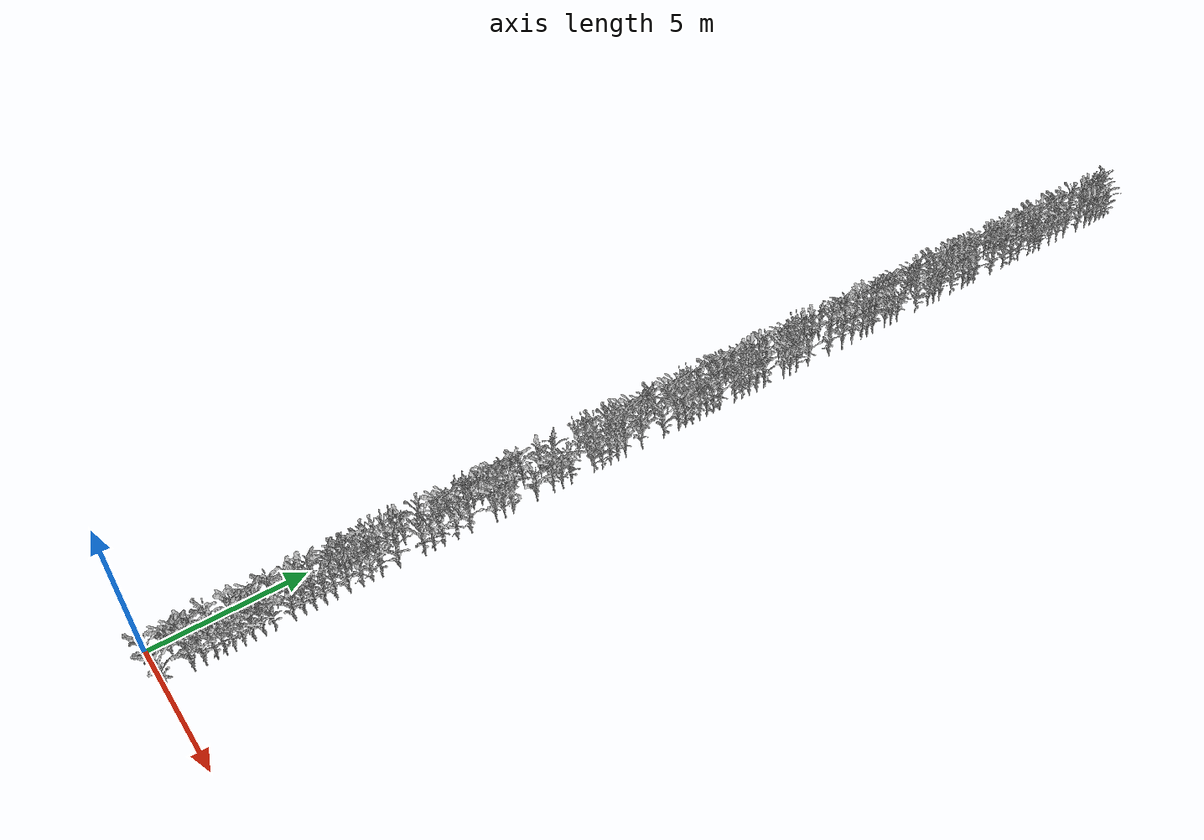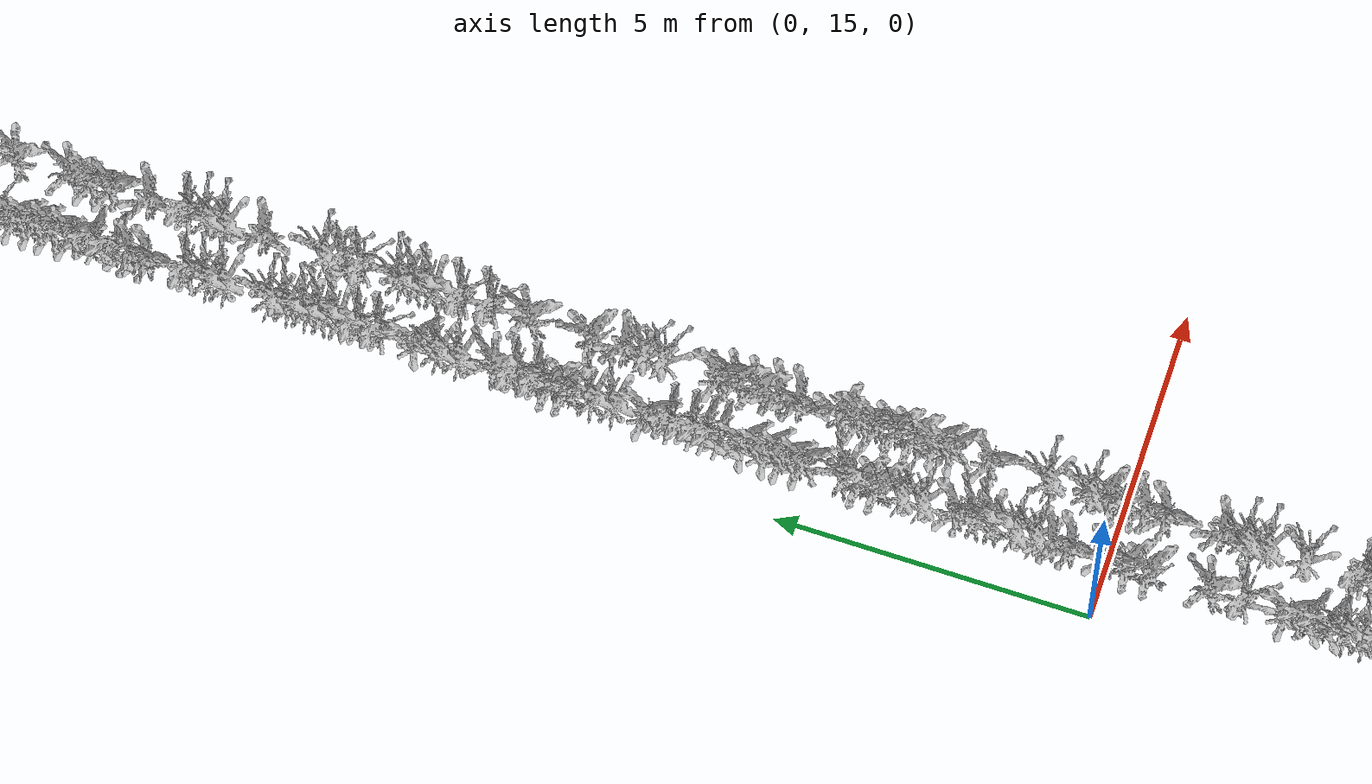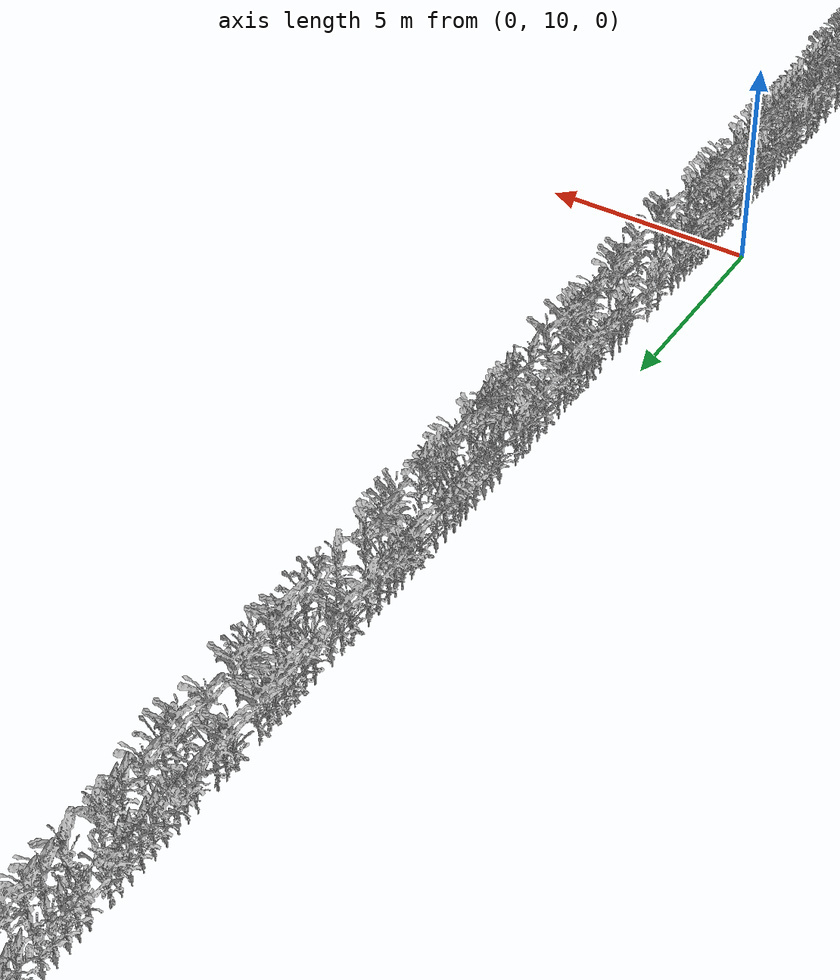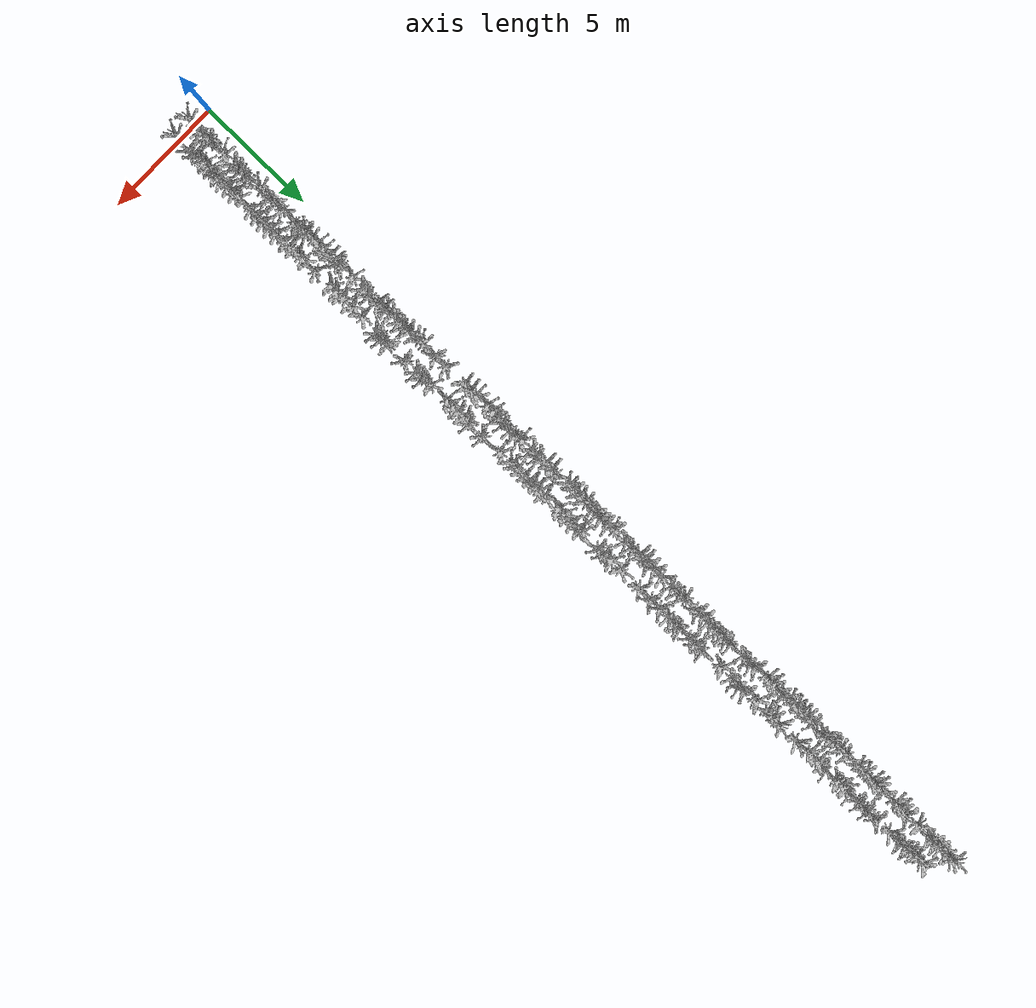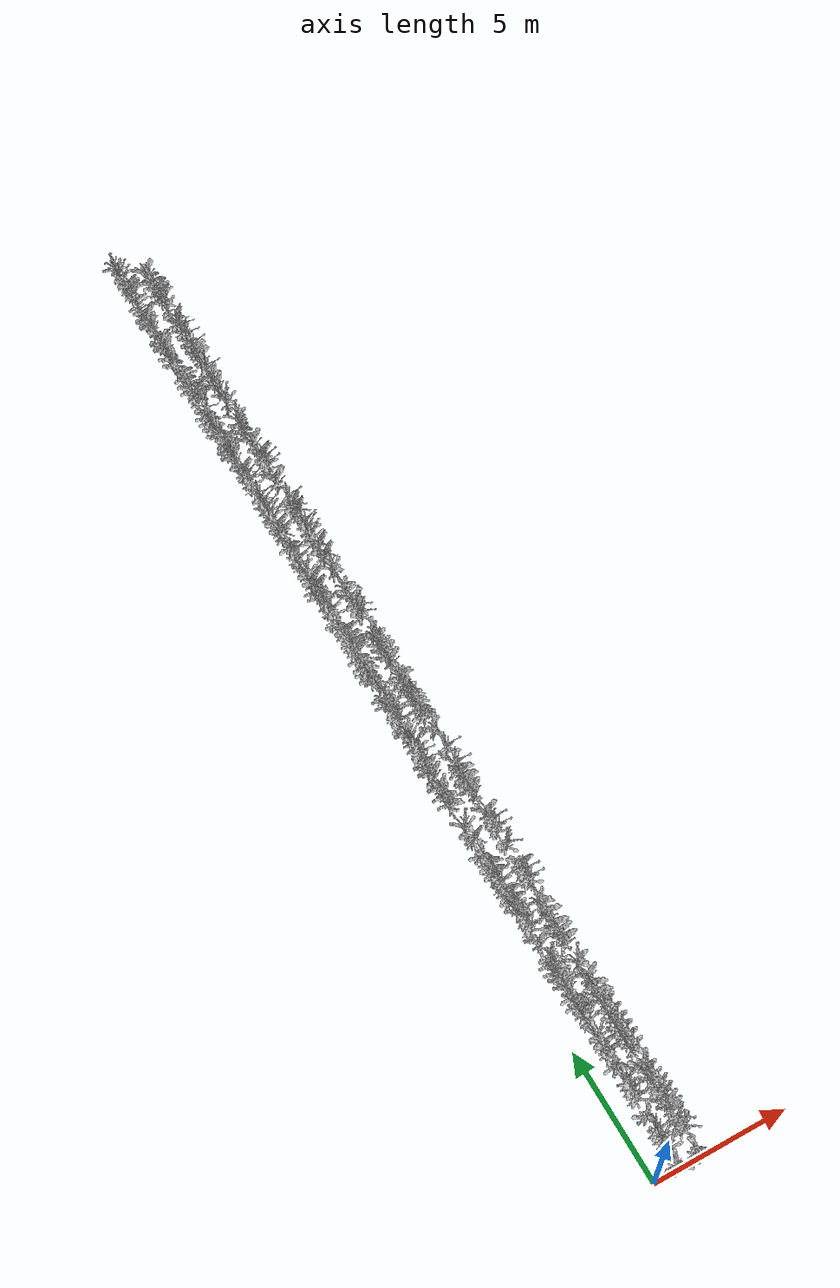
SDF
<sdf version="1.5">
  <model name="model_plot">
    <static>true</static>

    <include>
      <uri>model://sorghum_variant_2</uri>
      <name>plant_0_197</name>
      <pose>0.78 0.00859493432765372 0 0.0 0.0 0.15707963267948966</pose>
    </include>
<include>
      <uri>model://sorghum_variant_2</uri>
      <name>plant_0_199</name>
      <pose>0.78 0.604318459544044 0 0.0 0.0 3.01941960595019</pose>
    </include>
    <include>
      <uri>model://sorghum_variant_2</uri>
      <name>plant_0_200</name>
      <pose>0.78 0.92644527 0 0.0 0.0 3.01941960595019</pose>
    </include>
<include>
      <uri>model://sorghum_variant_2</uri>
      <name>plant_0_201</name>
      <pose>0.78 1.2485720710655503 0 0.0 0.0 2.4609142453120048</pose>
    </include>
<include>
      <uri>model://sorghum_variant_2</uri>
      <name>plant_0_203</name>
      <pose>0.78 1.8132744933393914 0 0.0 0.0 6.021385919380437</pose>
    </include>
<include>
      <uri>model://sorghum_variant_2</uri>
      <name>plant_0_205</name>
      <pose>0.78 2.495308846564527 0 0.0 0.0 2.4609142453120048</pose>
    </include>
    <include>
      <uri>model://sorghum_variant_2</uri>
      <name>plant_0_206</name>
      <pose>0.78 2.80290833 0 0.0 0.0 2.4609142453120048</pose>
    </include>
<include>
      <uri>model://sorghum_variant_2</uri>
      <name>plant_0_207</name>
      <pose>0.78 3.110507809060019 0 0.0 0.0 2.9321531433504737</pose>
    </include>
<include>
      <uri>model://sorghum_variant_2</uri>
      <name>plant_0_209</name>
      <pose>0.78 3.7275937663911125 0 0.0 0.0 0.22689280275926285</pose>
    </include>
<include>
      <uri>model://sorghum_variant_2</uri>
      <name>plant_0_211</name>
      <pose>0.78 4.2437941434434805 0 0.0 0.0 1.1693705988362009</pose>
    </include>
    <include>
      <uri>model://sorghum_variant_2</uri>
      <name>plant_0_212</name>
      <pose>0.78 4.54021915 0 0.0 0.0 1.1693705988362009</pose>
    </include>
<include>
      <uri>model://sorghum_variant_2</uri>
      <name>plant_0_213</name>
      <pose>0.78 4.836644146607865 0 0.0 0.0 3.2288591161895095</pose>
    </include>
<include>
      <uri>model://sorghum_variant_2</uri>
      <name>plant_0_215</name>
      <pose>0.78 5.469874423059792 0 0.0 0.0 3.3335788713091694</pose>
    </include>
    <include>
      <uri>model://sorghum_variant_2</uri>
      <name>plant_0_216</name>
      <pose>0.78 5.78034959 0 0.0 0.0 3.3335788713091694</pose>
    </include>
<include>
      <uri>model://sorghum_variant_2</uri>
      <name>plant_0_217</name>
      <pose>0.78 6.090824765904237 0 0.0 0.0 0.20943951023931956</pose>
    </include>
    <include>
      <uri>model://sorghum_variant_2</uri>
      <name>plant_0_218</name>
      <pose>0.78 6.40960816 0 0.0 0.0 0.20943951023931956</pose>
    </include>
<include>
      <uri>model://sorghum_variant_2</uri>
      <name>plant_0_219</name>
      <pose>0.78 6.728391545595026 0 0.0 0.0 5.480333851262195</pose>
    </include>
    <include>
      <uri>model://sorghum_variant_2</uri>
      <name>plant_0_220</name>
      <pose>0.78 7.02879881 0 0.0 0.0 5.480333851262195</pose>
    </include>
<include>
      <uri>model://sorghum_variant_2</uri>
      <name>plant_0_221</name>
      <pose>0.78 7.32920607511361 0 0.0 0.0 4.084070449666731</pose>
    </include>
    <include>
      <uri>model://sorghum_variant_2</uri>
      <name>plant_0_222</name>
      <pose>0.78 7.61508239 0 0.0 0.0 4.084070449666731</pose>
    </include>
<include>
      <uri>model://sorghum_variant_2</uri>
      <name>plant_0_223</name>
      <pose>0.78 7.900958697858983 0 0.0 0.0 1.9198621771937625</pose>
    </include>
<include>
      <uri>model://sorghum_variant_2</uri>
      <name>plant_0_225</name>
      <pose>0.78 8.54025663577937 0 0.0 0.0 5.358160803622591</pose>
    </include>
<include>
      <uri>model://sorghum_variant_2</uri>
      <name>plant_0_227</name>
      <pose>0.78 9.141726983418838 0 0.0 0.0 2.548180707911721</pose>
    </include>
    <include>
      <uri>model://sorghum_variant_2</uri>
      <name>plant_0_228</name>
      <pose>0.78 9.47685126 0 0.0 0.0 2.548180707911721</pose>
    </include>
<include>
      <uri>model://sorghum_variant_2</uri>
      <name>plant_0_229</name>
      <pose>0.78 9.81197552772033 0 0.0 0.0 3.8920842319473548</pose>
    </include>
    <include>
      <uri>model://sorghum_variant_2</uri>
      <name>plant_0_230</name>
      <pose>0.78 10.08239049 0 0.0 0.0 3.8920842319473548</pose>
    </include>
<include>
      <uri>model://sorghum_variant_2</uri>
      <name>plant_0_231</name>
      <pose>0.715 10.352805445266995 0 0.0 0.0 0.8726646259971648</pose>
    </include>
    <include>
      <uri>model://sorghum_variant_2</uri>
      <name>plant_0_232</name>
      <pose>0.715 10.65880189 0 0.0 0.0 0.8726646259971648</pose>
    </include>
<include>
      <uri>model://sorghum_variant_2</uri>
      <name>plant_0_233</name>
      <pose>0.715 10.964798343013909 0 0.0 0.0 2.705260340591211</pose>
    </include>
    <include>
      <uri>model://sorghum_variant_2</uri>
      <name>plant_0_234</name>
      <pose>0.715 11.26209431 0 0.0 0.0 2.705260340591211</pose>
    </include>
<include>
      <uri>model://sorghum_variant_2</uri>
      <name>plant_0_235</name>
      <pose>0.715 11.559390276855224 0 0.0 0.0 0.6457718232379019</pose>
    </include>
    <include>
      <uri>model://sorghum_variant_2</uri>
      <name>plant_0_236</name>
      <pose>0.715 11.86940034 0 0.0 0.0 0.6457718232379019</pose>
    </include>
<include>
      <uri>model://sorghum_variant_2</uri>
      <name>plant_0_237</name>
      <pose>0.715 12.179410399091381 0 0.0 0.0 0.0</pose>
    </include>
<include>
      <uri>model://sorghum_variant_2</uri>
      <name>plant_0_239</name>
      <pose>0.715 12.848557472244947 0 0.0 0.0 1.4486232791552935</pose>
    </include>
<include>
      <uri>model://sorghum_variant_2</uri>
      <name>plant_0_241</name>
      <pose>0.715 13.335958901374 0 0.0 0.0 3.5779249665883754</pose>
    </include>
<include>
      <uri>model://sorghum_variant_2</uri>
      <name>plant_0_244</name>
      <pose>0.715 14.312959432096134 0 0.0 0.0 4.223696789826278</pose>
    </include>
    <include>
      <uri>model://sorghum_variant_2</uri>
      <name>plant_0_245</name>
      <pose>0.715 14.64116904 0 0.0 0.0 4.223696789826278</pose>
    </include>
<include>
      <uri>model://sorghum_variant_2</uri>
      <name>plant_0_246</name>
      <pose>0.715 14.969378642265788 0 0.0 0.0 5.707226654021458</pose>
    </include>
<include>
      <uri>model://sorghum_variant_2</uri>
      <name>plant_0_248</name>
      <pose>0.715 15.531889966406707 0 0.0 0.0 5.497787143782138</pose>
    </include>
    <include>
      <uri>model://sorghum_variant_2</uri>
      <name>plant_0_249</name>
      <pose>0.715 15.82882609 0 0.0 0.0 5.497787143782138</pose>
    </include>
<include>
      <uri>model://sorghum_variant_2</uri>
      <name>plant_0_250</name>
      <pose>0.715 16.12576222307757 0 0.0 0.0 2.3736477827122884</pose>
    </include>
    <include>
      <uri>model://sorghum_variant_2</uri>
      <name>plant_0_251</name>
      <pose>0.715 16.46323430 0 0.0 0.0 2.3736477827122884</pose>
    </include>
<include>
      <uri>model://sorghum_variant_2</uri>
      <name>plant_0_252</name>
      <pose>0.715 16.80070637781182 0 0.0 0.0 3.12413936106985</pose>
    </include>
    <include>
      <uri>model://sorghum_variant_2</uri>
      <name>plant_0_253</name>
      <pose>0.715 17.07879843 0 0.0 0.0 3.12413936106985</pose>
    </include>
<include>
      <uri>model://sorghum_variant_2</uri>
      <name>plant_0_254</name>
      <pose>0.715 17.356890484137416 0 0.0 0.0 5.82939970166106</pose>
    </include>
<include>
      <uri>model://sorghum_variant_2</uri>
      <name>plant_0_256</name>
      <pose>0.715 17.911239119095676 0 0.0 0.0 2.3387411976724017</pose>
    </include>
    <include>
      <uri>model://sorghum_variant_2</uri>
      <name>plant_0_257</name>
      <pose>0.715 18.23995411 0 0.0 0.0 2.3387411976724017</pose>
    </include>
<include>
      <uri>model://sorghum_variant_2</uri>
      <name>plant_0_258</name>
      <pose>0.715 18.56866911002355 0 0.0 0.0 4.118977034706618</pose>
    </include>
    <include>
      <uri>model://sorghum_variant_2</uri>
      <name>plant_0_259</name>
      <pose>0.715 18.85528705 0 0.0 0.0 4.118977034706618</pose>
    </include>
<include>
      <uri>model://sorghum_variant_2</uri>
      <name>plant_0_260</name>
      <pose>0.715 19.141904991811764 0 0.0 0.0 2.9845130209103035</pose>
    </include>
<include>
      <uri>model://sorghum_variant_2</uri>
      <name>plant_0_262</name>
      <pose>0.715 19.811266004382336 0 0.0 0.0 0.03490658503988659</pose>
    </include>
    <include>
      <uri>model://sorghum_variant_2</uri>
      <name>plant_0_263</name>
      <pose>0.715 20.10839341 0 0.0 0.0 0.03490658503988659</pose>
    </include>
<include>
      <uri>model://sorghum_variant_2</uri>
      <name>plant_0_264</name>
      <pose>0.715 20.405520809036915 0 0.0 0.0 0.29670597283903605</pose>
    </include>
    <include>
      <uri>model://sorghum_variant_2</uri>
      <name>plant_0_265</name>
      <pose>0.715 20.76090992 0 0.0 0.0 0.29670597283903605</pose>
    </include>
<include>
      <uri>model://sorghum_variant_2</uri>
      <name>plant_0_266</name>
      <pose>0.715 21.116299040407956 0 0.0 0.0 1.0122909661567112</pose>
    </include>
    <include>
      <uri>model://sorghum_variant_2</uri>
      <name>plant_0_267</name>
      <pose>0.715 21.34557024 0 0.0 0.0 1.0122909661567112</pose>
    </include>
<include>
      <uri>model://sorghum_variant_2</uri>
      <name>plant_0_268</name>
      <pose>0.715 21.57484143683173 0 0.0 0.0 1.1519173063162575</pose>
    </include>
    <include>
      <uri>model://sorghum_variant_2</uri>
      <name>plant_0_269</name>
      <pose>0.715 21.91540734 0 0.0 0.0 1.1519173063162575</pose>
    </include>
<include>
      <uri>model://sorghum_variant_2</uri>
      <name>plant_0_270</name>
      <pose>0.715 22.25597324315723 0 0.0 0.0 6.2482787221397</pose>
    </include>
<include>
      <uri>model://sorghum_variant_2</uri>
      <name>plant_0_272</name>
      <pose>0.715 22.81104156581477 0 0.0 0.0 2.8448866807507573</pose>
    </include>
    <include>
      <uri>model://sorghum_variant_2</uri>
      <name>plant_0_273</name>
      <pose>0.715 23.15305795 0 0.0 0.0 2.8448866807507573</pose>
    </include>
<include>
      <uri>model://sorghum_variant_2</uri>
      <name>plant_0_274</name>
      <pose>0.715 23.49507432733307 0 0.0 0.0 4.084070449666731</pose>
    </include>
    <include>
      <uri>model://sorghum_variant_2</uri>
      <name>plant_0_275</name>
      <pose>0.715 23.73889568 0 0.0 0.0 4.084070449666731</pose>
    </include>
<include>
      <uri>model://sorghum_variant_2</uri>
      <name>plant_0_276</name>
      <pose>0.715 23.982717028432347 0 0.0 0.0 1.3962634015954636</pose>
    </include>
    <include>
      <uri>model://sorghum_variant_2</uri>
      <name>plant_0_277</name>
      <pose>0.715 24.33633864 0 0.0 0.0 1.3962634015954636</pose>
    </include>
<include>
      <uri>model://sorghum_variant_2</uri>
      <name>plant_0_278</name>
      <pose>0.715 24.689960260017916 0 0.0 0.0 3.4033920413889427</pose>
    </include>
<include>
      <uri>model://sorghum_variant_2</uri>
      <name>plant_0_280</name>
      <pose>0.715 25.265015847987254 0 0.0 0.0 2.722713633111154</pose>
    </include>
    <include>
      <uri>model://sorghum_variant_2</uri>
      <name>plant_0_281</name>
      <pose>0.715 25.61032810 0 0.0 0.0 2.722713633111154</pose>
    </include>
<include>
      <uri>model://sorghum_variant_2</uri>
      <name>plant_0_282</name>
      <pose>0.715 25.95564034303193 0 0.0 0.0 0.4014257279586958</pose>
    </include>
<include>
      <uri>model://sorghum_variant_2</uri>
      <name>plant_0_284</name>
      <pose>0.715 26.510050704998978 0 0.0 0.0 1.4835298641951802</pose>
    </include>
    <include>
      <uri>model://sorghum_variant_2</uri>
      <name>plant_0_285</name>
      <pose>0.715 26.84054824 0 0.0 0.0 1.4835298641951802</pose>
    </include>
<include>
      <uri>model://sorghum_variant_2</uri>
      <name>plant_0_286</name>
      <pose>0.715 27.17104577483048 0 0.0 0.0 3.0892327760299634</pose>
    </include>
    <include>
      <uri>model://sorghum_variant_2</uri>
      <name>plant_0_287</name>
      <pose>0.715 27.43921198 0 0.0 0.0 3.0892327760299634</pose>
    </include>
<include>
      <uri>model://sorghum_variant_2</uri>
      <name>plant_0_288</name>
      <pose>0.715 27.707378185004483 0 0.0 0.0 2.8623399732707004</pose>
    </include>
    <include>
      <uri>model://sorghum_variant_2</uri>
      <name>plant_0_289</name>
      <pose>0.715 27.99475659 0 0.0 0.0 2.8623399732707004</pose>
    </include>
<include>
      <uri>model://sorghum_variant_2</uri>
      <name>plant_0_290</name>
      <pose>0.715 28.282135003039308 0 0.0 0.0 2.5656340004316642</pose>
    </include>
<include>
      <uri>model://sorghum_variant_2</uri>
      <name>plant_0_292</name>
      <pose>0.715 29.01417815028271 0 0.0 0.0 2.827433388230814</pose>
    </include>
    <include>
      <uri>model://sorghum_variant_2</uri>
      <name>plant_0_293</name>
      <pose>0.715 29.29238710 0 0.0 0.0 2.827433388230814</pose>
    </include>
<include>
      <uri>model://sorghum_variant_2</uri>
      <name>plant_0_294</name>
      <pose>0.715 29.570596049572952 0 0.0 0.0 1.5184364492350666</pose>
    </include>
<include>
      <uri>model://sorghum_variant_2</uri>
      <name>plant_0_296</name>
      <pose>0.715 30.177373925418866 0 0.0 0.0 5.707226654021458</pose>
    </include>
    <include>
      <uri>model://sorghum_variant_2</uri>
      <name>plant_0_297</name>
      <pose>0.715 30.46282510 0 0.0 0.0 5.707226654021458</pose>
    </include>
<include>
      <uri>model://sorghum_variant_2</uri>
      <name>plant_0_298</name>
      <pose>0.715 30.748276268427777 0 0.0 0.0 0.9948376736367679</pose>
    </include>
    <include>
      <uri>model://sorghum_variant_2</uri>
      <name>plant_0_299</name>
      <pose>0.715 31.08383781 0 0.0 0.0 0.9948376736367679</pose>
    </include>
<include>
      <uri>model://sorghum_variant_2</uri>
      <name>plant_0_300</name>
      <pose>0.715 31.419399358693582 0 0.0 0.0 6.19591884457987</pose>
    </include>
    <include>
      <uri>model://sorghum_variant_2</uri>
      <name>plant_0_301</name>
      <pose>0.715 31.74364827 0 0.0 0.0 6.19591884457987</pose>
    </include>
<include>
      <uri>model://sorghum_variant_2</uri>
      <name>plant_0_302</name>
      <pose>0.715 32.06789718037348 0 0.0 0.0 0.10471975511965978</pose>
    </include>
    <include>
      <uri>model://sorghum_variant_2</uri>
      <name>plant_0_303</name>
      <pose>0.715 32.35220637 0 0.0 0.0 0.10471975511965978</pose>
    </include>
<include>
      <uri>model://sorghum_variant_2</uri>
      <name>plant_0_304</name>
      <pose>0.715 32.636515553250796 0 0.0 0.0 2.059488517353309</pose>
    </include>
<include>
      <uri>model://sorghum_variant_2</uri>
      <name>plant_0_306</name>
      <pose>0.715 33.20595443605181 0 0.0 0.0 1.1868238913561442</pose>
    </include>
    <include>
      <uri>model://sorghum_variant_2</uri>
      <name>plant_0_307</name>
      <pose>0.715 33.47907076 0 0.0 0.0 1.1868238913561442</pose>
    </include>
<include>
      <uri>model://sorghum_variant_2</uri>
      <name>plant_0_308</name>
      <pose>0.715 33.75218708362628 0 0.0 0.0 0.4188790204786391</pose>
    </include>
    <include>
      <uri>model://sorghum_variant_2</uri>
      <name>plant_0_309</name>
      <pose>0.715 34.08693715 0 0.0 0.0 0.4188790204786391</pose>
    </include>
<include>
      <uri>model://sorghum_variant_2</uri>
      <name>plant_0_310</name>
      <pose>0.715 34.421687217208024 0 0.0 0.0 0.6457718232379019</pose>
    </include>
<include>
      <uri>model://sorghum_variant_2</uri>
      <name>plant_0_312</name>
      <pose>0.715 34.99556642452193 0 0.0 0.0 6.19591884457987</pose>
    </include>
    <include>
      <uri>model://sorghum_variant_2</uri>
      <name>plant_0_313</name>
      <pose>0.715 35.33116153 0 0.0 0.0 6.19591884457987</pose>
    </include>
<include>
      <uri>model://sorghum_variant_2</uri>
      <name>plant_0_314</name>
      <pose>0.715 35.66675663785984 0 0.0 0.0 5.707226654021458</pose>
    </include>
    <include>
      <uri>model://sorghum_variant_2</uri>
      <name>plant_0_315</name>
      <pose>0.715 35.95836062 0 0.0 0.0 5.707226654021458</pose>
    </include>
<include>
      <uri>model://sorghum_variant_2</uri>
      <name>plant_0_316</name>
      <pose>0.715 36.24996460405333 0 0.0 0.0 0.9773843811168246</pose>
    </include>
<include>
      <uri>model://sorghum_variant_2</uri>
      <name>plant_0_318</name>
      <pose>0.715 36.884789338309574 0 0.0 0.0 5.82939970166106</pose>
    </include>
    <include>
      <uri>model://sorghum_variant_2</uri>
      <name>plant_0_319</name>
      <pose>0.715 37.17878643 0 0.0 0.0 5.82939970166106</pose>
    </include>
<include>
      <uri>model://sorghum_variant_2</uri>
      <name>plant_0_320</name>
      <pose>0.715 37.472783520911314 0 0.0 0.0 1.5533430342749532</pose>
    </include>
<include>
      <uri>model://sorghum_variant_2</uri>
      <name>plant_0_322</name>
      <pose>0.715 38.10041997228612 0 0.0 0.0 4.71238898038469</pose>
    </include>
<include>
      <uri>model://sorghum_variant_2</uri>
      <name>plant_0_324</name>
      <pose>0.715 38.76175421944016 0 0.0 0.0 1.1693705988362009</pose>
    </include>
    <include>
      <uri>model://sorghum_variant_2</uri>
      <name>plant_0_325</name>
      <pose>0.715 39.04169322 0 0.0 0.0 1.1693705988362009</pose>
    </include>
<include>
      <uri>model://sorghum_variant_2</uri>
      <name>plant_0_326</name>
      <pose>0.715 39.321632227679885 0 0.0 0.0 3.246312408709453</pose>
    </include>
    <include>
      <uri>model://sorghum_variant_2</uri>
      <name>plant_0_327</name>
      <pose>0.715 39.64123955 0 0.0 0.0 3.246312408709453</pose>
    </include>
<include>
      <uri>model://sorghum_variant_2</uri>
      <name>plant_0_328</name>
      <pose>0.715 39.960846879504054 0 0.0 0.0 4.084070449666731</pose>
    </include>
<include>
      <uri>model://sorghum_variant_2</uri>
      <name>plant_2_0</name>
      <pose>1.56 0.0722431121896649 0 0.0 0.0 0.4188790204786391</pose>
    </include>
<include>
      <uri>model://sorghum_variant_2</uri>
      <name>plant_2_3</name>
      <pose>1.56 0.9149569423502892 0 0.0 0.0 1.9024088846738192</pose>
    </include>
    <include>
      <uri>model://sorghum_variant_2</uri>
      <name>plant_2_4</name>
      <pose>1.56 1.25294735 0 0.0 0.0 1.9024088846738192</pose>
    </include>
<include>
      <uri>model://sorghum_variant_2</uri>
      <name>plant_2_5</name>
      <pose>1.56 1.59093775228701 0 0.0 0.0 5.288347633542818</pose>
    </include>
    <include>
      <uri>model://sorghum_variant_2</uri>
      <name>plant_2_6</name>
      <pose>1.56 1.85587054 0 0.0 0.0 5.288347633542818</pose>
    </include>
<include>
      <uri>model://sorghum_variant_2</uri>
      <name>plant_2_7</name>
      <pose>1.56 2.120803323638079 0 0.0 0.0 1.5882496193148399</pose>
    </include>
    <include>
      <uri>model://sorghum_variant_2</uri>
      <name>plant_2_8</name>
      <pose>1.56 2.41316729 0 0.0 0.0 1.5882496193148399</pose>
    </include>
<include>
      <uri>model://sorghum_variant_2</uri>
      <name>plant_2_9</name>
      <pose>1.56 2.7055312585385534 0 0.0 0.0 3.735004599267865</pose>
    </include>
    <include>
      <uri>model://sorghum_variant_2</uri>
      <name>plant_2_10</name>
      <pose>1.56 3.01817609 0 0.0 0.0 3.735004599267865</pose>
    </include>
<include>
      <uri>model://sorghum_variant_2</uri>
      <name>plant_2_11</name>
      <pose>1.56 3.330820923755391 0 0.0 0.0 5.777039824101231</pose>
    </include>
<include>
      <uri>model://sorghum_variant_2</uri>
      <name>plant_2_13</name>
      <pose>1.56 3.9422446996040326 0 0.0 0.0 3.6302848441482056</pose>
    </include>
    <include>
      <uri>model://sorghum_variant_2</uri>
      <name>plant_2_14</name>
      <pose>1.56 4.26973195 0 0.0 0.0 3.6302848441482056</pose>
    </include>
<include>
      <uri>model://sorghum_variant_2</uri>
      <name>plant_2_15</name>
      <pose>1.56 4.5972191976072105 0 0.0 0.0 3.595378259108319</pose>
    </include>
    <include>
      <uri>model://sorghum_variant_2</uri>
      <name>plant_2_16</name>
      <pose>1.56 4.92776640 0 0.0 0.0 3.595378259108319</pose>
    </include>
<include>
      <uri>model://sorghum_variant_2</uri>
      <name>plant_2_17</name>
      <pose>1.56 5.258313602567546 0 0.0 0.0 3.6651914291880923</pose>
    </include>
    <include>
      <uri>model://sorghum_variant_2</uri>
      <name>plant_2_18</name>
      <pose>1.56 5.68111976 0 0.0 0.0 3.6651914291880923</pose>
    </include>
<include>
      <uri>model://sorghum_variant_2</uri>
      <name>plant_2_20</name>
      <pose>1.56 6.103925923630441 0 0.0 0.0 4.485496177625427</pose>
    </include>
    <include>
      <uri>model://sorghum_variant_2</uri>
      <name>plant_2_21</name>
      <pose>1.56 6.42445128 0 0.0 0.0 4.485496177625427</pose>
    </include>
<include>
      <uri>model://sorghum_variant_2</uri>
      <name>plant_2_22</name>
      <pose>1.56 6.7449766295643485 0 0.0 0.0 5.375614096142535</pose>
    </include>
<include>
      <uri>model://sorghum_variant_2</uri>
      <name>plant_2_24</name>
      <pose>1.56 7.3217006443866435 0 0.0 0.0 3.7000980142279785</pose>
    </include>
<include>
      <uri>model://sorghum_variant_2</uri>
      <name>plant_2_27</name>
      <pose>1.56 8.18209896556657 0 0.0 0.0 5.044001538263612</pose>
    </include>
    <include>
      <uri>model://sorghum_variant_2</uri>
      <name>plant_2_28</name>
      <pose>1.56 8.51127921 0 0.0 0.0 5.044001538263612</pose>
    </include>
<include>
      <uri>model://sorghum_variant_2</uri>
      <name>plant_2_29</name>
      <pose>1.56 8.840459444922976 0 0.0 0.0 4.642575810304916</pose>
    </include>
    <include>
      <uri>model://sorghum_variant_2</uri>
      <name>plant_2_30</name>
      <pose>1.56 9.31603522 0 0.0 0.0 4.642575810304916</pose>
    </include>
<include>
      <uri>model://sorghum_variant_2</uri>
      <name>plant_2_32</name>
      <pose>1.56 9.791610990182422 0 0.0 0.0 4.153883619746504</pose>
    </include>
<include>
      <uri>model://sorghum_variant_2</uri>
      <name>plant_2_35</name>
      <pose>1.625 10.65619092240277 0 0.0 0.0 2.4609142453120048</pose>
    </include>
    <include>
      <uri>model://sorghum_variant_2</uri>
      <name>plant_2_36</name>
      <pose>1.625 10.96206667 0 0.0 0.0 2.4609142453120048</pose>
    </include>
<include>
      <uri>model://sorghum_variant_2</uri>
      <name>plant_2_37</name>
      <pose>1.625 11.267942421546527 0 0.0 0.0 1.117010721276371</pose>
    </include>
<include>
      <uri>model://sorghum_variant_2</uri>
      <name>plant_2_40</name>
      <pose>1.625 12.149254848354301 0 0.0 0.0 1.9896753472735358</pose>
    </include>
<include>
      <uri>model://sorghum_variant_2</uri>
      <name>plant_2_42</name>
      <pose>1.625 12.776467284209291 0 0.0 0.0 2.478367537831948</pose>
    </include>
    <include>
      <uri>model://sorghum_variant_2</uri>
      <name>plant_2_43</name>
      <pose>1.625 13.10766625 0 0.0 0.0 2.478367537831948</pose>
    </include>
<include>
      <uri>model://sorghum_variant_2</uri>
      <name>plant_2_44</name>
      <pose>1.625 13.438865223423544 0 0.0 0.0 5.218534463463046</pose>
    </include>
<include>
      <uri>model://sorghum_variant_2</uri>
      <name>plant_2_47</name>
      <pose>1.625 14.311562907365612 0 0.0 0.0 5.6374134839416845</pose>
    </include>
    <include>
      <uri>model://sorghum_variant_2</uri>
      <name>plant_2_48</name>
      <pose>1.625 14.63417828 0 0.0 0.0 5.6374134839416845</pose>
    </include>
<include>
      <uri>model://sorghum_variant_2</uri>
      <name>plant_2_49</name>
      <pose>1.625 14.95679365136133 0 0.0 0.0 4.537856055185257</pose>
    </include>
    <include>
      <uri>model://sorghum_variant_2</uri>
      <name>plant_2_50</name>
      <pose>1.625 15.25446452 0 0.0 0.0 4.537856055185257</pose>
    </include>
<include>
      <uri>model://sorghum_variant_2</uri>
      <name>plant_2_51</name>
      <pose>1.625 15.552135381397202 0 0.0 0.0 2.3911010752322315</pose>
    </include>
<include>
      <uri>model://sorghum_variant_2</uri>
      <name>plant_2_53</name>
      <pose>1.625 16.21185230944986 0 0.0 0.0 2.530727415391778</pose>
    </include>
<include>
      <uri>model://sorghum_variant_2</uri>
      <name>plant_2_56</name>
      <pose>1.625 17.102550354114655 0 0.0 0.0 5.934119456780721</pose>
    </include>
<include>
      <uri>model://sorghum_variant_2</uri>
      <name>plant_2_58</name>
      <pose>1.625 17.718838725051555 0 0.0 0.0 0.17453292519943295</pose>
    </include>
    <include>
      <uri>model://sorghum_variant_2</uri>
      <name>plant_2_59</name>
      <pose>1.625 18.00359018 0 0.0 0.0 0.17453292519943295</pose>
    </include>
<include>
      <uri>model://sorghum_variant_2</uri>
      <name>plant_2_60</name>
      <pose>1.625 18.28834164345712 0 0.0 0.0 4.084070449666731</pose>
    </include>
    <include>
      <uri>model://sorghum_variant_2</uri>
      <name>plant_2_61</name>
      <pose>1.625 18.59177885 0 0.0 0.0 4.084070449666731</pose>
    </include>
<include>
      <uri>model://sorghum_variant_2</uri>
      <name>plant_2_62</name>
      <pose>1.625 18.89521605673562 0 0.0 0.0 6.126105674500097</pose>
    </include>
    <include>
      <uri>model://sorghum_variant_2</uri>
      <name>plant_2_63</name>
      <pose>1.625 19.17453401 0 0.0 0.0 6.126105674500097</pose>
    </include>
<include>
      <uri>model://sorghum_variant_2</uri>
      <name>plant_2_64</name>
      <pose>1.625 19.45385195820251 0 0.0 0.0 4.520402762665314</pose>
    </include>
<include>
      <uri>model://sorghum_variant_2</uri>
      <name>plant_2_66</name>
      <pose>1.625 20.102740928495336 0 0.0 0.0 5.358160803622591</pose>
    </include>
    <include>
      <uri>model://sorghum_variant_2</uri>
      <name>plant_2_67</name>
      <pose>1.625 20.42083225 0 0.0 0.0 5.358160803622591</pose>
    </include>
<include>
      <uri>model://sorghum_variant_2</uri>
      <name>plant_2_68</name>
      <pose>1.625 20.7389235712109 0 0.0 0.0 3.7699111843077517</pose>
    </include>
    <include>
      <uri>model://sorghum_variant_2</uri>
      <name>plant_2_69</name>
      <pose>1.625 21.07187967 0 0.0 0.0 3.7699111843077517</pose>
    </include>
<include>
      <uri>model://sorghum_variant_2</uri>
      <name>plant_2_70</name>
      <pose>1.625 21.404835768364755 0 0.0 0.0 6.161012259539984</pose>
    </include>
<include>
      <uri>model://sorghum_variant_2</uri>
      <name>plant_2_73</name>
      <pose>1.625 22.28756521786409 0 0.0 0.0 1.9722220547535925</pose>
    </include>
    <include>
      <uri>model://sorghum_variant_2</uri>
      <name>plant_2_74</name>
      <pose>1.625 22.58088413 0 0.0 0.0 1.9722220547535925</pose>
    </include>
<include>
      <uri>model://sorghum_variant_2</uri>
      <name>plant_2_75</name>
      <pose>1.625 22.874203034503722 0 0.0 0.0 5.201081170943102</pose>
    </include>
<include>
      <uri>model://sorghum_variant_2</uri>
      <name>plant_2_77</name>
      <pose>1.625 23.409803879599792 0 0.0 0.0 4.310963252425994</pose>
    </include>
<include>
      <uri>model://sorghum_variant_2</uri>
      <name>plant_2_80</name>
      <pose>1.625 24.381074496686136 0 0.0 0.0 3.8048177693476384</pose>
    </include>
<include>
      <uri>model://sorghum_variant_2</uri>
      <name>plant_2_82</name>
      <pose>1.625 25.021455440983225 0 0.0 0.0 1.5533430342749532</pose>
    </include>
    <include>
      <uri>model://sorghum_variant_2</uri>
      <name>plant_2_83</name>
      <pose>1.625 25.48948187 0 0.0 0.0 1.5533430342749532</pose>
    </include>
<include>
      <uri>model://sorghum_variant_2</uri>
      <name>plant_2_85</name>
      <pose>1.625 25.95750830378677 0 0.0 0.0 3.1066860685499065</pose>
    </include>
    <include>
      <uri>model://sorghum_variant_2</uri>
      <name>plant_2_86</name>
      <pose>1.625 26.22684406 0 0.0 0.0 3.1066860685499065</pose>
    </include>
<include>
      <uri>model://sorghum_variant_2</uri>
      <name>plant_2_87</name>
      <pose>1.625 26.496179812789883 0 0.0 0.0 2.775073510670984</pose>
    </include>
<include>
      <uri>model://sorghum_variant_2</uri>
      <name>plant_2_89</name>
      <pose>1.625 27.09849817943908 0 0.0 0.0 1.7278759594743862</pose>
    </include>
    <include>
      <uri>model://sorghum_variant_2</uri>
      <name>plant_2_90</name>
      <pose>1.625 27.40515166 0 0.0 0.0 1.7278759594743862</pose>
    </include>
<include>
      <uri>model://sorghum_variant_2</uri>
      <name>plant_2_91</name>
      <pose>1.625 27.711805140816114 0 0.0 0.0 2.5830872929516078</pose>
    </include>
<include>
      <uri>model://sorghum_variant_2</uri>
      <name>plant_2_94</name>
      <pose>1.625 28.647495912578098 0 0.0 0.0 5.305800926062762</pose>
    </include>
<include>
      <uri>model://sorghum_variant_2</uri>
      <name>plant_2_96</name>
      <pose>1.625 29.289541779285088 0 0.0 0.0 2.705260340591211</pose>
    </include>
    <include>
      <uri>model://sorghum_variant_2</uri>
      <name>plant_2_97</name>
      <pose>1.625 29.58956855 0 0.0 0.0 2.705260340591211</pose>
    </include>
<include>
      <uri>model://sorghum_variant_2</uri>
      <name>plant_2_98</name>
      <pose>1.625 29.889595323775666 0 0.0 0.0 1.3788101090755203</pose>
    </include>
<include>
      <uri>model://sorghum_variant_2</uri>
      <name>plant_2_100</name>
      <pose>1.625 30.474699769313986 0 0.0 0.0 5.410520681182422</pose>
    </include>
<include>
      <uri>model://sorghum_variant_2</uri>
      <name>plant_2_102</name>
      <pose>1.625 31.101107391917523 0 0.0 0.0 6.1086523819801535</pose>
    </include>
    <include>
      <uri>model://sorghum_variant_2</uri>
      <name>plant_2_103</name>
      <pose>1.625 31.40765472 0 0.0 0.0 6.1086523819801535</pose>
    </include>
<include>
      <uri>model://sorghum_variant_2</uri>
      <name>plant_2_104</name>
      <pose>1.625 31.71420203965975 0 0.0 0.0 3.7524578917878086</pose>
    </include>
<include>
      <uri>model://sorghum_variant_2</uri>
      <name>plant_2_107</name>
      <pose>1.625 32.62932280314702 0 0.0 0.0 3.5604716740684323</pose>
    </include>
<include>
      <uri>model://sorghum_variant_2</uri>
      <name>plant_2_109</name>
      <pose>1.625 33.27397994001854 0 0.0 0.0 5.794493116621174</pose>
    </include>
    <include>
      <uri>model://sorghum_variant_2</uri>
      <name>plant_2_110</name>
      <pose>1.625 33.71508021 0 0.0 0.0 5.794493116621174</pose>
    </include>
<include>
      <uri>model://sorghum_variant_2</uri>
      <name>plant_2_112</name>
      <pose>1.625 34.15618048027995 0 0.0 0.0 2.5656340004316642</pose>
    </include>
<include>
      <uri>model://sorghum_variant_2</uri>
      <name>plant_2_114</name>
      <pose>1.625 34.73717638464077 0 0.0 0.0 5.1312680008633285</pose>
    </include>
    <include>
      <uri>model://sorghum_variant_2</uri>
      <name>plant_2_115</name>
      <pose>1.625 35.05401767 0 0.0 0.0 5.1312680008633285</pose>
    </include>
<include>
      <uri>model://sorghum_variant_2</uri>
      <name>plant_2_116</name>
      <pose>1.625 35.37085894975716 0 0.0 0.0 2.600540585471551</pose>
    </include>
<include>
      <uri>model://sorghum_variant_2</uri>
      <name>plant_2_118</name>
      <pose>1.625 35.94105098582321 0 0.0 0.0 2.234021442552742</pose>
    </include>
    <include>
      <uri>model://sorghum_variant_2</uri>
      <name>plant_2_119</name>
      <pose>1.625 36.36893891 0 0.0 0.0 2.234021442552742</pose>
    </include>
<include>
      <uri>model://sorghum_variant_2</uri>
      <name>plant_2_121</name>
      <pose>1.625 36.79682683170542 0 0.0 0.0 1.7278759594743862</pose>
    </include>
<include>
      <uri>model://sorghum_variant_2</uri>
      <name>plant_2_123</name>
      <pose>1.625 37.54135756138237 0 0.0 0.0 3.717551306747922</pose>
    </include>
<include>
      <uri>model://sorghum_variant_2</uri>
      <name>plant_2_125</name>
      <pose>1.625 38.06030419610935 0 0.0 0.0 1.117010721276371</pose>
    </include>
    <include>
      <uri>model://sorghum_variant_2</uri>
      <name>plant_2_126</name>
      <pose>1.625 38.37953038 0 0.0 0.0 1.117010721276371</pose>
    </include>
<include>
      <uri>model://sorghum_variant_2</uri>
      <name>plant_2_127</name>
      <pose>1.625 38.698756561289144 0 0.0 0.0 0.4188790204786391</pose>
    </include>
    <include>
      <uri>model://sorghum_variant_2</uri>
      <name>plant_2_128</name>
      <pose>1.625 38.96528439 0 0.0 0.0 0.4188790204786391</pose>
    </include>
<include>
      <uri>model://sorghum_variant_2</uri>
      <name>plant_2_129</name>
      <pose>1.625 39.2318122178856 0 0.0 0.0 5.445427266222308</pose>
    </include>
</model>
</sdf>

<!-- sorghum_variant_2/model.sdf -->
<sdf version="1.5">
     <model name="sorghum_variant_2">
          <static>true</static>
          <link name="link">
               <inertial>
                    <pose>0 0 0 0 0 0</pose>
                    <mass>4</mass>
                    <inertia>
                         <ixx>0.01</ixx>
                         <ixy>0</ixy>
                         <ixz>0</ixz>
                         <iyy>0.01</iyy>
                         <iyz>0</iyz>
                         <izz>0.01</izz>
                    </inertia>
               </inertial>

               <collision name='collision'>
                    <pose>0 0 0.625 0 0 0</pose>
                    <geometry>
                         <cylinder>
                              <radius>0.0075</radius>
                              <length>1.25</length>
                         </cylinder>
                    </geometry>
                    <max_contacts>10</max_contacts>
               </collision>

               <visual name="stem">
                    <geometry>
                         <mesh>
                              <uri>model://sorghum_variant_2/meshes/sorghum_variant_2.dae</uri>
                              <submesh>
                                   <name>Stem</name>
                              </submesh>
                         </mesh>
                    </geometry>
                    <material>
                         <script>
                              <uri>model://sorghum_variant_2/materials/scripts/</uri>
                              <uri>model://sorghum_variant_2/materials/textures/</uri>
                              <name>Sorghum/Stem</name>
                         </script>
                    </material>
               </visual>

               <visual name="leaves">
                    <geometry>
                         <mesh>
                              <uri>model://sorghum_variant_2/meshes/sorghum_variant_2.dae</uri>
                              <submesh>
                                   <name>Leaves</name>
                              </submesh>
                         </mesh>
                    </geometry>
                    <material>
                         <script>
                              <uri>model://sorghum_variant_2/materials/scripts/</uri>
                              <uri>model://sorghum_variant_2/materials/textures/</uri>
                              <name>Sorghum/Leaves</name>
                         </script>
                    </material>
               </visual>

               <visual name="tip">
                    <geometry>
                         <mesh>
                              <uri>model://sorghum_variant_2/meshes/sorghum_variant_2.dae</uri>
                              <submesh>
                                   <name>Tip</name>
                              </submesh>
                         </mesh>
                    </geometry>
                    <material>
                         <script>
                              <uri>model://sorghum_variant_2/materials/scripts/</uri>
                              <uri>model://sorghum_variant_2/materials/textures/</uri>
                              <name>Sorghum/Tip</name>
                         </script>
                    </material>
               </visual>

          </link>
     </model>
</sdf>
